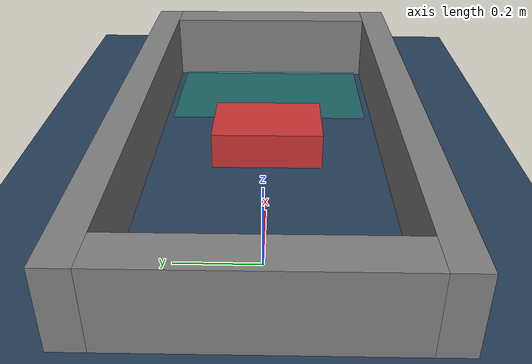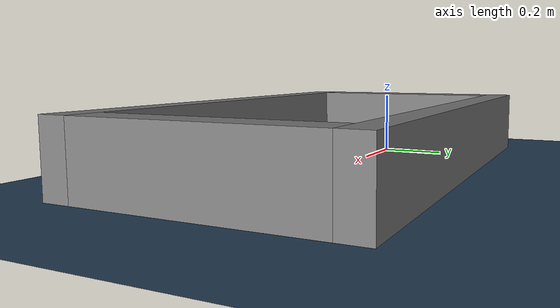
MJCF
<mujoco>
  <option timestep="0.01" integrator="RK4" />
  <worldbody>
    <light pos="0 0 1.5" dir="0 0 -1" directional="true" />
    <geom name="floor" size="0 0 0.05" type="plane" material="groundplane" friction=".5 0.005 0.001"
      priority="2" condim="4" />
  </worldbody>

  <worldbody>

    <body name="ball" pos=".0 0 .05">
      <geom name="gball_0" type="sphere" size="0.02" mass="5." material="BallMat"
        friction=".5 0.005 0.001 " condim="4" />
      <site name="sensor_ball" />
      <joint name="joint_x" type="slide" pos="0 0 0" axis="1 0 0" />
      <joint name="joint_y" type="slide" pos="0 0 0" axis="0 1 0" />
    </body>

    <body name="wall_3" pos="0.5 0.0 .05">
      <geom name="wall_3" type="box" size="0.1 0.15 0.05" mass=".1" material="static" condim="4" />
    </body>

    <body name="case" pos="0 0 0.1">
      <geom name="gcase_a" type="box" size="0.05 0.32 0.1" pos="-.2 0 0" />
      <geom name="gcase_b" type="box" size="0.05 0.32 0.1" pos="1.1 0 0" />
      <geom name="gcase_c" type="box" size="0.7 0.04 0.1" pos="0.45 .36 0" />
      <geom name="gcase_d" type="box" size="0.7 0.04 0.1" pos="0.45 -.36 0" />
    </body>

    <site name="target4" type="box" pos="0.9 0.0 0.0" size="0.2 0.3" rgba="0 1 0.6 0.2" />

  </worldbody>

  <actuator>
    <motor name="actuator_x" joint="joint_x" gear="1" />
    <motor name="actuator_y" joint="joint_y" gear="1" />
  </actuator>

  <asset>
    <!-- Materials for visualization -->
    <material name="MatPlane" rgba="0.8 0.9 0.8 1" />
    <material name="movable" rgba="0.94 1.0 0.0 1" />
    <material name="static" rgba="0.8 0.2 0.2 1" />
    <material name="BallMat" rgba="0.2 0.2 0.8 1" />

    <texture type="skybox" builtin="gradient" rgb1="0.3 0.5 0.7" rgb2="0 0 0" width="512"
      height="3072" />
    <texture type="2d" name="groundplane" builtin="checker" mark="edge" rgb1="0.2 0.3 0.4"
      rgb2="0.1 0.2 0.3"
      markrgb="0.8 0.8 0.8" width="300" height="300" />
    <material name="groundplane" texture="groundplane" texuniform="true" texrepeat="5 5"
      reflectance="0.2" />
  </asset>

  <visual>
    <headlight diffuse="0.6 0.6 0.6" ambient="0.3 0.3 0.3" specular="0 0 0" />
    <rgba haze="0.15 0.25 0.35 1" />
    <global azimuth="60" elevation="-20" />
  </visual>

  <sensor>
    <velocimeter name="sensor_ball" site="sensor_ball" />
  </sensor>

</mujoco>
